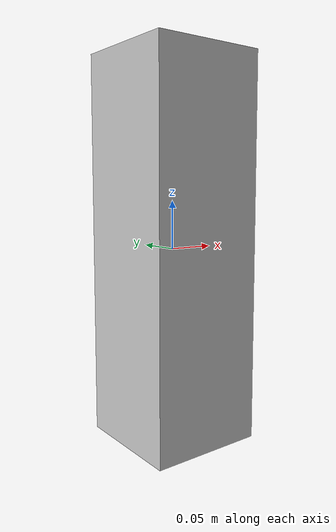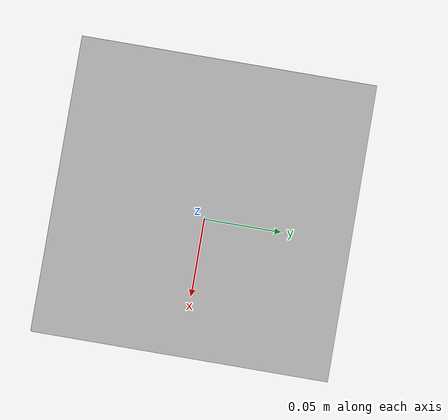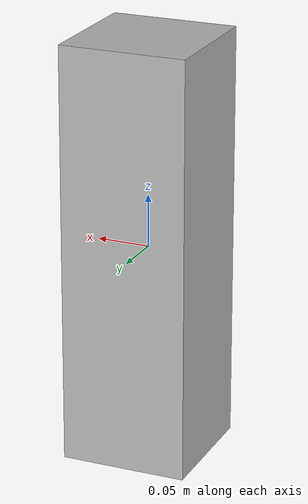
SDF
<?xml version="1.0" ?>
<sdf version="1.5">
  <model name="pilar">
    <link name="link">
      <collision name="collision">
        <geometry>
          <mesh>
            <scale>0.2 0.2 0.2</scale>
            <uri>model://pilar/meshes/pilar.stl</uri>
          </mesh>
        </geometry>
      </collision>
      <visual name="visual">
        <geometry>
          <mesh>
            <scale>0.2 0.2 0.2</scale>
            <uri>model://pilar/meshes/pilar.dae</uri>
          </mesh>
        </geometry>
      </visual>
    </link>
  </model>
</sdf>
